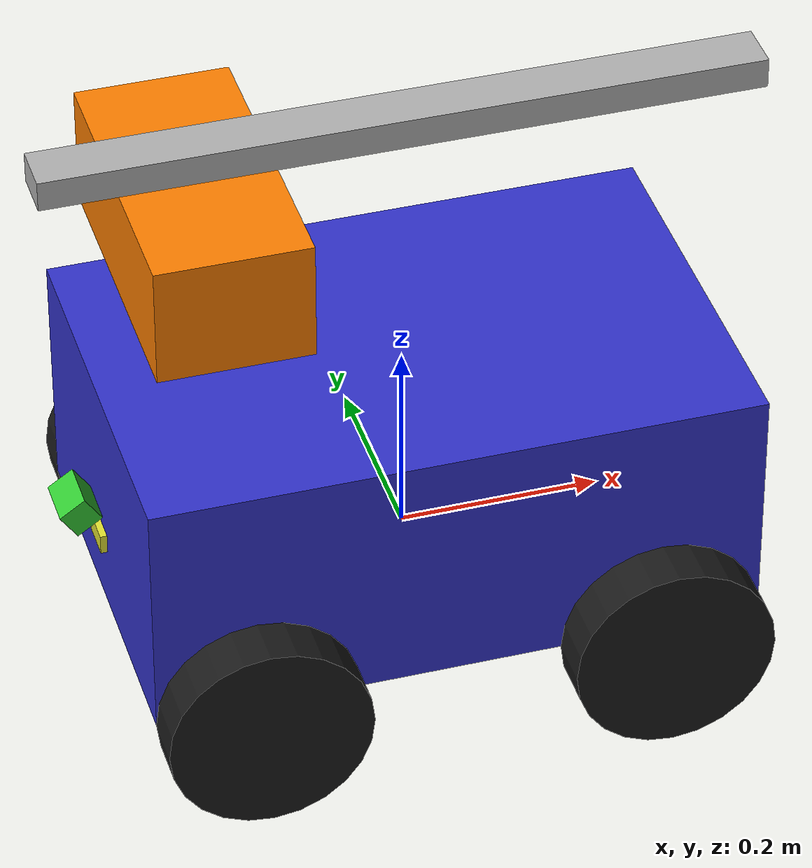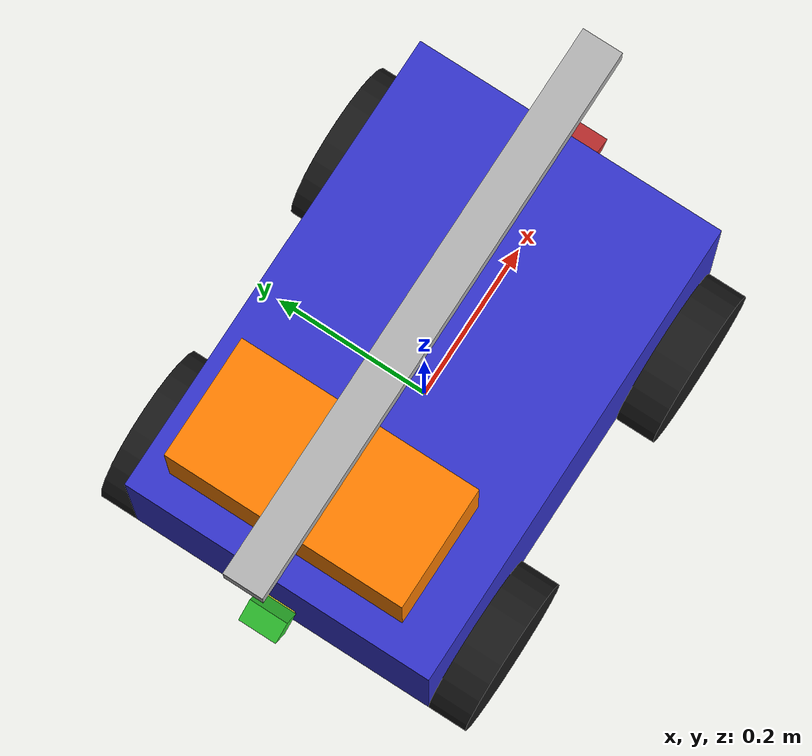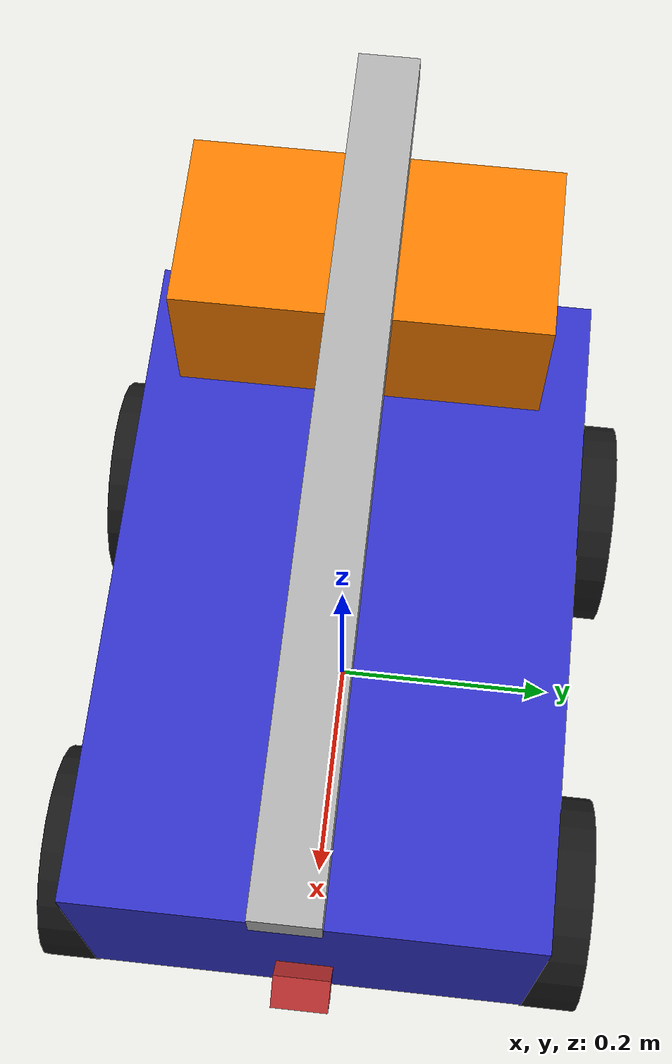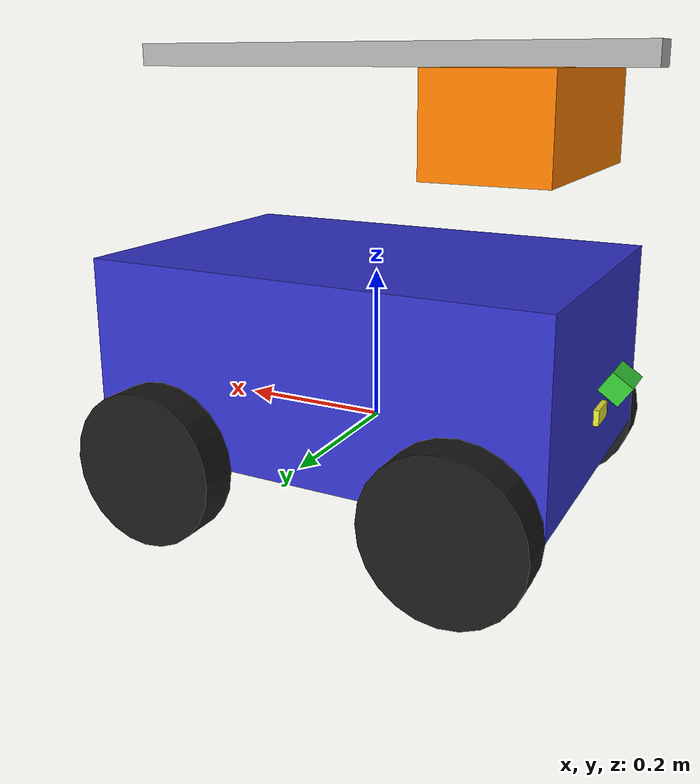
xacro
<?xml version="1.0"?>
<robot xmlns:xacro="http://www.ros.org/wiki/xacro" name="line_follower_robot">

  <!-- Define constants -->
  <xacro:property name="base_width" value="0.4"/>
  <xacro:property name="base_length" value="0.6"/>
  <xacro:property name="base_height" value="0.25"/>
  <xacro:property name="wheel_radius" value="0.1"/>
  <xacro:property name="wheel_width" value="0.05"/>
  <xacro:property name="wheel_separation" value="0.45"/>
  <xacro:property name="wheel_base" value="0.4"/>

  <!-- Base Link -->
  <link name="base_link">
    <visual>
      <geometry>
        <box size="${base_length} ${base_width} ${base_height}"/>
      </geometry>
      <material name="blue">
        <color rgba="0.2 0.2 0.8 1"/>
      </material>
    </visual>
    <collision>
      <geometry>
        <box size="${base_length} ${base_width} ${base_height}"/>
      </geometry>
    </collision>
    <inertial>
      <mass value="5.0"/>
      <inertia ixx="0.1" ixy="0.0" ixz="0.0" iyy="0.1" iyz="0.0" izz="0.1"/>
    </inertial>
  </link>

  <!-- Footprint Link -->
  <link name="base_footprint"/>

  <joint name="base_footprint_joint" type="fixed">
    <parent link="base_footprint"/>
    <child link="base_link"/>
    <origin xyz="0 0 ${wheel_radius}" rpy="0 0 0"/>
  </joint>

  <!-- Wheel Macro -->
  <xacro:macro name="wheel" params="prefix x_pos y_pos">
    <link name="${prefix}_wheel">
      <visual>
        <geometry>
          <cylinder radius="${wheel_radius}" length="${wheel_width}"/>
        </geometry>
        <material name="black">
          <color rgba="0.1 0.1 0.1 1"/>
        </material>
        <origin xyz="0 0 0" rpy="${pi/2} 0 0"/>
      </visual>
      <collision>
        <geometry>
          <cylinder radius="${wheel_radius}" length="${wheel_width}"/>
        </geometry>
        <origin xyz="0 0 0" rpy="${pi/2} 0 0"/>
      </collision>
      <inertial>
        <mass value="0.5"/>
        <inertia ixx="0.01" ixy="0.0" ixz="0.0" iyy="0.01" iyz="0.0" izz="0.01"/>
      </inertial>
    </link>

    <joint name="${prefix}_wheel_joint" type="continuous">
      <parent link="base_link"/>
      <child link="${prefix}_wheel"/>
      <origin xyz="${x_pos} ${y_pos} ${-base_height/2}" rpy="0 0 0"/>
      <axis xyz="0 1 0"/>
    </joint>

    <!-- Gazebo reference for wheel -->
    <gazebo reference="${prefix}_wheel">
      <material>Gazebo/Black</material>
      <mu1>1.0</mu1>
      <mu2>1.0</mu2>
      <kp>1000000.0</kp>
      <kd>100.0</kd>
    </gazebo>
  </xacro:macro>

  <!-- Create 4 wheels -->
  <xacro:wheel prefix="front_left" x_pos="${wheel_base/2}" y_pos="${wheel_separation/2}"/>
  <xacro:wheel prefix="front_right" x_pos="${wheel_base/2}" y_pos="${-wheel_separation/2}"/>
  <xacro:wheel prefix="rear_left" x_pos="${-wheel_base/2}" y_pos="${wheel_separation/2}"/>
  <xacro:wheel prefix="rear_right" x_pos="${-wheel_base/2}" y_pos="${-wheel_separation/2}"/>

  <!-- Camera Link -->
  <link name="camera_link">
    <visual>
      <geometry>
        <box size="0.03 0.05 0.03"/>
      </geometry>
      <material name="red">
        <color rgba="0.8 0.2 0.2 1"/>
      </material>
    </visual>
    <collision>
      <geometry>
        <box size="0.03 0.05 0.03"/>
      </geometry>
    </collision>
    <inertial>
      <mass value="0.05"/>
      <inertia ixx="0.0001" ixy="0.0" ixz="0.0" iyy="0.0001" iyz="0.0" izz="0.0001"/>
    </inertial>
  </link>

  <joint name="camera_joint" type="fixed">
    <parent link="base_link"/>
    <child link="camera_link"/>
    <origin xyz="${base_length/2 + 0.025} 0 ${-base_height/2 + 0.12}" rpy="0 0.6 0"/>
  </joint>

  <!-- Camera Sensor -->
  <gazebo reference="camera_link">
    <sensor type="camera" name="camera">
      <update_rate>30.0</update_rate>
      <camera name="head">
        <horizontal_fov>1.3962634</horizontal_fov>
        <image>
          <width>640</width>
          <height>480</height>
          <format>R8G8B8</format>
        </image>
        <clip>
          <near>0.02</near>
          <far>300</far>
        </clip>
        <noise>
          <type>gaussian</type>
          <mean>0.0</mean>
          <stddev>0.007</stddev>
        </noise>
      </camera>
      <plugin name="camera_controller" filename="libgazebo_ros_camera.so">
        <frame_name>camera_link</frame_name>
        <ros>
          <namespace>/</namespace>
          <remapping>~/image_raw:=camera/image_raw</remapping>
          <remapping>~/camera_info:=camera/camera_info</remapping>
        </ros>
      </plugin>
    </sensor>
  </gazebo>

  <!-- Rear Camera Link -->
  <link name="rear_camera_link">
    <visual>
      <geometry>
        <box size="0.03 0.05 0.03"/>
      </geometry>
      <material name="green">
        <color rgba="0.2 0.8 0.2 1"/>
      </material>
    </visual>
    <collision>
      <geometry>
        <box size="0.03 0.05 0.03"/>
      </geometry>
    </collision>
    <inertial>
      <mass value="0.05"/>
      <inertia ixx="0.0001" ixy="0.0" ixz="0.0" iyy="0.0001" iyz="0.0" izz="0.0001"/>
    </inertial>
  </link>

  <joint name="rear_camera_joint" type="fixed">
    <parent link="base_link"/>
    <child link="rear_camera_link"/>
    <origin xyz="${-base_length/2 - 0.025} 0 ${-base_height/2 + 0.12}" rpy="0 0.6 3.14159"/>
  </joint>

  <!-- Rear Camera Sensor -->
  <gazebo reference="rear_camera_link">
    <sensor type="camera" name="rear_camera">
      <update_rate>30.0</update_rate>
      <camera name="rear">
        <horizontal_fov>1.3962634</horizontal_fov>
        <image>
          <width>640</width>
          <height>480</height>
          <format>R8G8B8</format>
        </image>
        <clip>
          <near>0.02</near>
          <far>300</far>
        </clip>
        <noise>
          <type>gaussian</type>
          <mean>0.0</mean>
          <stddev>0.007</stddev>
        </noise>
      </camera>
      <plugin name="rear_camera_controller" filename="libgazebo_ros_camera.so">
        <frame_name>rear_camera_link</frame_name>
        <ros>
          <namespace>/</namespace>
          <remapping>~/image_raw:=rear_camera/image_raw</remapping>
          <remapping>~/camera_info:=rear_camera/camera_info</remapping>
        </ros>
      </plugin>
    </sensor>
  </gazebo>

  <!-- Bottom Camera Link (fixed under chassis) -->
  <link name="bottom_camera_link">
    <visual>
      <geometry>
        <box size="0.05 0.05 0.02"/>
      </geometry>
      <material name="yellow">
        <color rgba="0.8 0.8 0.2 1"/>
      </material>
    </visual>
    <collision>
      <geometry>
        <box size="0.05 0.05 0.02"/>
      </geometry>
    </collision>
    <inertial>
      <mass value="0.05"/>
      <inertia ixx="0.0001" ixy="0.0" ixz="0.0" iyy="0.0001" iyz="0.0" izz="0.0001"/>
    </inertial>
  </link>

  <joint name="bottom_camera_joint" type="fixed">
    <parent link="base_link"/>
    <child link="bottom_camera_link"/>
    <origin xyz="0 0 ${-base_height/2 }" rpy="0 1.5708 0"/>
  </joint>

  <!-- Bottom Camera Sensor -->
  <gazebo reference="bottom_camera_link">
    <sensor type="camera" name="bottom_camera">
      <update_rate>30.0</update_rate>
      <camera name="bottom">
        <horizontal_fov>1.3962634</horizontal_fov>
        <image>
          <width>640</width>
          <height>640</height>
          <format>R8G8B8</format>
        </image>
        <clip>
          <near>0.02</near>
          <far>2.0</far>
        </clip>
        <noise>
          <type>gaussian</type>
          <mean>0.0</mean>
          <stddev>0.007</stddev>
        </noise>
      </camera>
      <plugin name="bottom_camera_controller" filename="libgazebo_ros_camera.so">
        <frame_name>bottom_camera_link</frame_name>
        <ros>
          <namespace>/</namespace>
          <remapping>~/image_raw:=bottom_camera/image_raw</remapping>
          <remapping>~/camera_info:=bottom_camera/camera_info</remapping>
        </ros>
      </plugin>
    </sensor>
  </gazebo>

  <!-- ros2_control -->
  <ros2_control name="gazebo_ros2_control" type="system">
    <hardware>
      <plugin>gazebo_ros2_control/GazeboSystem</plugin>
    </hardware>

    <!-- Front Left Wheel Joint -->
    <joint name="front_left_wheel_joint">
      <command_interface name="velocity">
        <param name="min">-10</param>
        <param name="max">10</param>
      </command_interface>
      <state_interface name="position"/>
      <state_interface name="velocity"/>
    </joint>

    <!-- Front Right Wheel Joint -->
    <joint name="front_right_wheel_joint">
      <command_interface name="velocity">
        <param name="min">-10</param>
        <param name="max">10</param>
      </command_interface>
      <state_interface name="position"/>
      <state_interface name="velocity"/>
    </joint>

    <!-- Rear Left Wheel Joint -->
    <joint name="rear_left_wheel_joint">
      <command_interface name="velocity">
        <param name="min">-10</param>
        <param name="max">10</param>
      </command_interface>
      <state_interface name="position"/>
      <state_interface name="velocity"/>
    </joint>

    <!-- Rear Right Wheel Joint -->
    <joint name="rear_right_wheel_joint">
      <command_interface name="velocity">
        <param name="min">-10</param>
        <param name="max">10</param>
      </command_interface>
      <state_interface name="position"/>
      <state_interface name="velocity"/>
    </joint>
  </ros2_control>

  <!-- Gazebo ros2_control plugin -->
  <gazebo>
    <plugin filename="libgazebo_ros2_control.so" name="gazebo_ros2_control">
      <parameters>$(find blue_line_follower)/config/controller_config.yaml</parameters>
    </plugin>
  </gazebo>

  <!-- Front Ultrasonic Sensor Link -->
  <link name="front_ultrasonic_link">
    <visual>
      <geometry>
        <box size="0.02 0.04 0.02"/>
      </geometry>
      <material name="yellow">
        <color rgba="0.9 0.9 0.2 1"/>
      </material>
    </visual>
    <collision>
      <geometry>
        <box size="0.02 0.04 0.02"/>
      </geometry>
    </collision>
    <inertial>
      <mass value="0.01"/>
      <inertia ixx="0.0001" ixy="0.0" ixz="0.0" iyy="0.0001" iyz="0.0" izz="0.0001"/>
    </inertial>
  </link>

  <joint name="front_ultrasonic_joint" type="fixed">
    <parent link="camera_link"/>
    <child link="front_ultrasonic_link"/>
    <origin xyz="0.0 0 -0.05" rpy="0 -0.6 0"/>
  </joint>

  <!-- Front Ultrasonic Sensor -->
  <gazebo reference="front_ultrasonic_link">
    <sensor type="ray" name="front_ultrasonic_sensor">
      <pose>0 0 0 0 0 0</pose>
      <visualize>true</visualize>
      <update_rate>10</update_rate>
      <ray>
        <scan>
          <horizontal>
            <samples>5</samples>
            <resolution>1</resolution>
            <min_angle>-0.12</min_angle>
            <max_angle>0.12</max_angle>
          </horizontal>
          <vertical>
            <samples>5</samples>
            <resolution>1</resolution>
            <min_angle>-0.12</min_angle>
            <max_angle>0.12</max_angle>
          </vertical>
        </scan>
        <range>
          <min>0.02</min>
          <max>2.0</max>
          <resolution>0.01</resolution>
        </range>
        <noise>
          <type>gaussian</type>
          <mean>0.0</mean>
          <stddev>0.01</stddev>
        </noise>
      </ray>
      <plugin name="front_ultrasonic_controller" filename="libgazebo_ros_ray_sensor.so">
        <ros>
          <namespace>/</namespace>
          <remapping>~/out:=front_ultrasonic/range</remapping>
        </ros>
        <output_type>sensor_msgs/Range</output_type>
        <frame_name>front_ultrasonic_link</frame_name>
        <radiation_type>ultrasound</radiation_type>
      </plugin>
    </sensor>
  </gazebo>

  <!-- Rear Ultrasonic Sensor Link -->
  <link name="rear_ultrasonic_link">
    <visual>
      <geometry>
        <box size="0.02 0.04 0.02"/>
      </geometry>
      <material name="yellow">
        <color rgba="0.9 0.9 0.2 1"/>
      </material>
    </visual>
    <collision>
      <geometry>
        <box size="0.02 0.04 0.02"/>
      </geometry>
    </collision>
    <inertial>
      <mass value="0.01"/>
      <inertia ixx="0.0001" ixy="0.0" ixz="0.0" iyy="0.0001" iyz="0.0" izz="0.0001"/>
    </inertial>
  </link>

  <joint name="rear_ultrasonic_joint" type="fixed">
    <parent link="rear_camera_link"/>
    <child link="rear_ultrasonic_link"/>
    <origin xyz="0.0 0 -0.05" rpy="0 -0.6 0"/>
  </joint>

  <!-- Rear Ultrasonic Sensor -->
  <gazebo reference="rear_ultrasonic_link">
    <sensor type="ray" name="rear_ultrasonic_sensor">
      <pose>0 0 0 0 0 0</pose>
      <visualize>true</visualize>
      <update_rate>10</update_rate>
      <ray>
        <scan>
          <horizontal>
            <samples>5</samples>
            <resolution>1</resolution>
            <min_angle>-0.12</min_angle>
            <max_angle>0.12</max_angle>
          </horizontal>
          <vertical>
            <samples>5</samples>
            <resolution>1</resolution>
            <min_angle>-0.12</min_angle>
            <max_angle>0.12</max_angle>
          </vertical>
        </scan>
        <range>
          <min>0.02</min>
          <max>2.0</max>
          <resolution>0.01</resolution>
        </range>
        <noise>
          <type>gaussian</type>
          <mean>0.0</mean>
          <stddev>0.01</stddev>
        </noise>
      </ray>
      <plugin name="rear_ultrasonic_controller" filename="libgazebo_ros_ray_sensor.so">
        <ros>
          <namespace>/</namespace>
          <remapping>~/out:=rear_ultrasonic/range</remapping>
        </ros>
        <output_type>sensor_msgs/Range</output_type>
        <frame_name>rear_ultrasonic_link</frame_name>
        <radiation_type>ultrasound</radiation_type>
      </plugin>
    </sensor>
  </gazebo>

  <!-- Gazebo base_link material -->
  <gazebo reference="base_link">
    <material>Gazebo/Blue</material>
  </gazebo>

  <!-- ===== PUSHER MECHANISM ===== -->
  <!-- Rail horizontal fixé au-dessus du robot (axe longitudinal) -->
  <link name="pusher_rail_link">
    <visual>
      <geometry>
        <box size="0.7 0.05 0.03"/>
      </geometry>
      <material name="silver">
        <color rgba="0.7 0.7 0.7 1"/>
      </material>
    </visual>
    <collision>
      <geometry>
        <box size="0.7 0.05 0.03"/>
      </geometry>
    </collision>
    <inertial>
      <mass value="0.3"/>
      <inertia ixx="0.001" ixy="0.0" ixz="0.0" iyy="0.012" iyz="0.0" izz="0.012"/>
    </inertial>
  </link>

  <joint name="pusher_rail_joint" type="fixed">
    <parent link="base_link"/>
    <child link="pusher_rail_link"/>
    <origin xyz="0 0 ${base_height/2 + 0.25}" rpy="0 0 0"/>
  </joint>

  <!-- Prisme pousseur - Se déplace d'arrière vers l'avant -->
  <link name="pusher_arm_link">
    <visual>
      <geometry>
        <box size="0.15 0.3 0.12"/>
      </geometry>
      <material name="orange">
        <color rgba="1.0 0.5 0.0 1"/>
      </material>
    </visual>
    <collision>
      <geometry>
        <box size="0.15 0.3 0.12"/>
      </geometry>
    </collision>
    <inertial>
      <mass value="0.2"/>
      <inertia ixx="0.001" ixy="0.0" ixz="0.0" iyy="0.001" iyz="0.0" izz="0.001"/>
    </inertial>
  </link>

  <!-- Joint prismatique - permet au pousseur de glisser d'arrière vers l'avant -->
  <joint name="pusher_joint" type="prismatic">
    <parent link="pusher_rail_link"/>
    <child link="pusher_arm_link"/>
    <origin xyz="${-base_length/2 + 0.1} 0 -0.075" rpy="0 0 0"/>
    <axis xyz="1 0 0"/>
    <limit lower="0.0" upper="0.6" effort="50.0" velocity="0.5"/>
  </joint>

  <!-- Add pusher to ros2_control -->
  <ros2_control name="pusher_control" type="system">
    <hardware>
      <plugin>gazebo_ros2_control/GazeboSystem</plugin>
    </hardware>

    <joint name="pusher_joint">
      <command_interface name="position">
        <param name="min">-0.25</param>
        <param name="max">0.25</param>
      </command_interface>
      <state_interface name="position"/>
      <state_interface name="velocity"/>
    </joint>
  </ros2_control>

  <!-- Gazebo materials for pusher -->
  <gazebo reference="pusher_rail_link">
    <material>Gazebo/White</material>
  </gazebo>

  <gazebo reference="pusher_arm_link">
    <material>Gazebo/Orange</material>
  </gazebo>

</robot>
